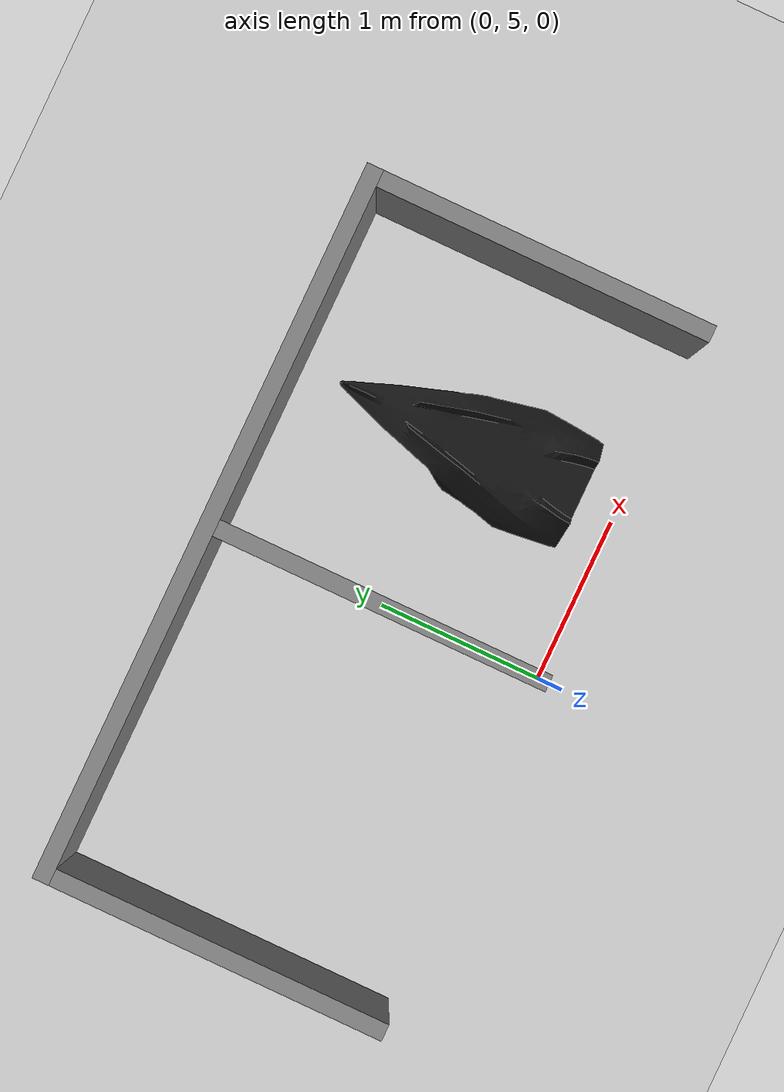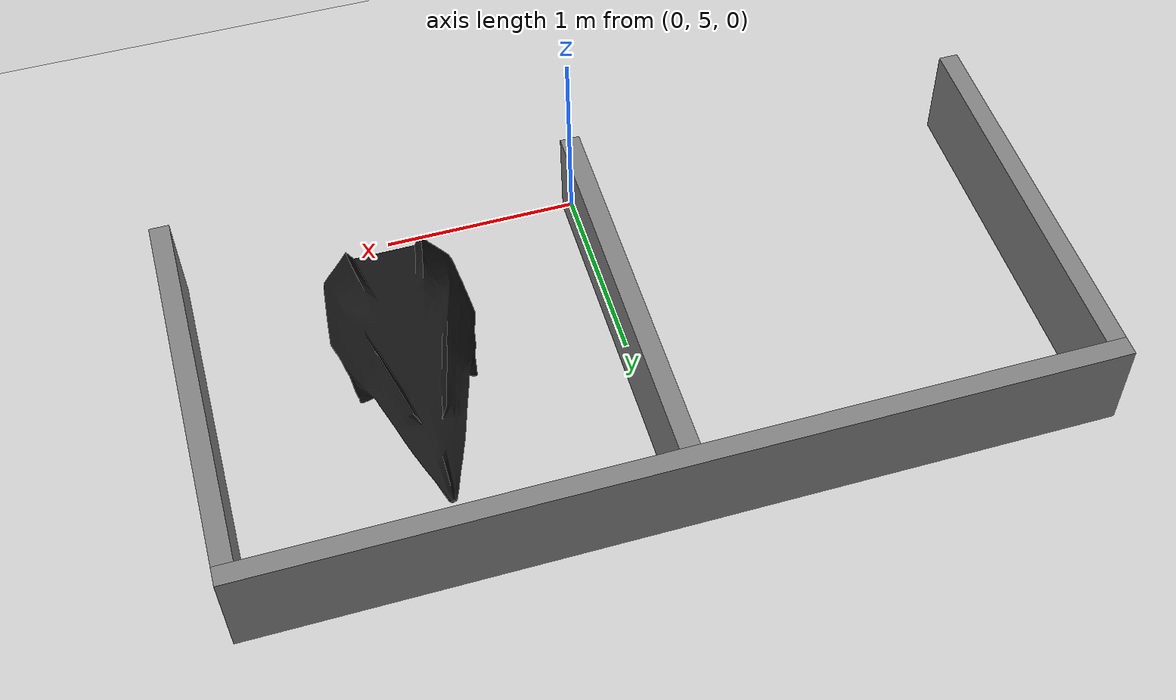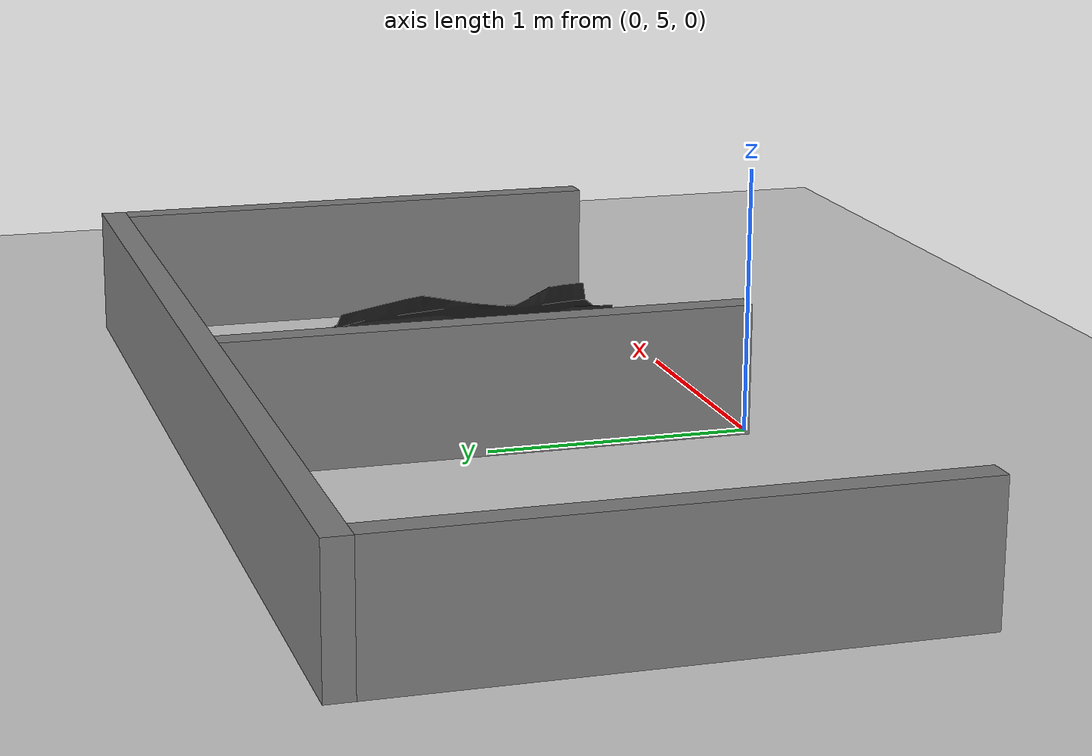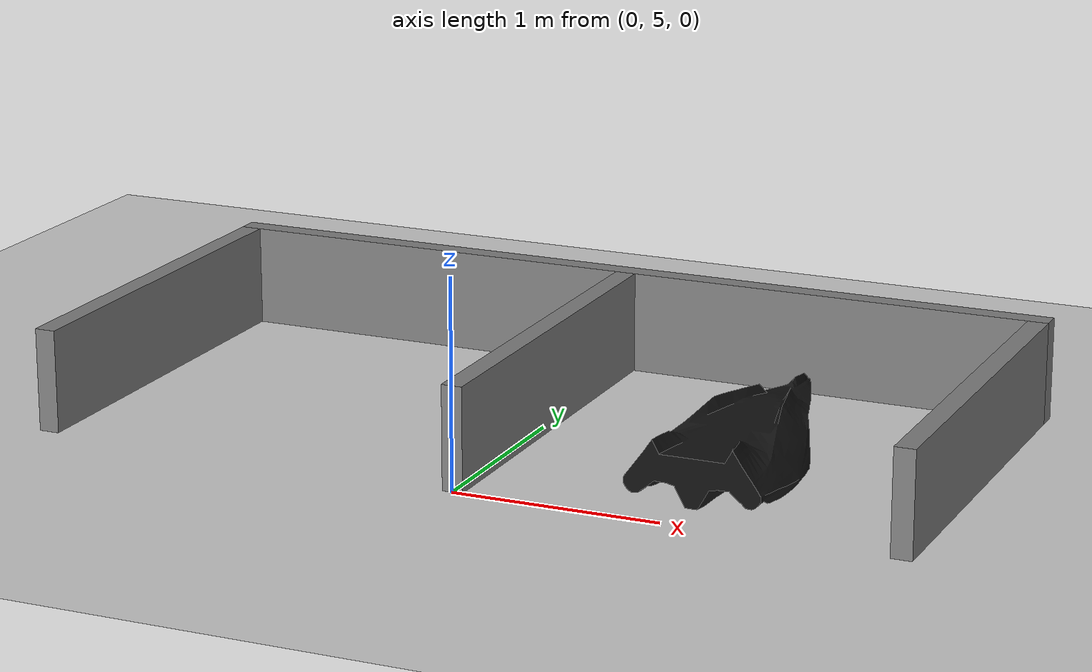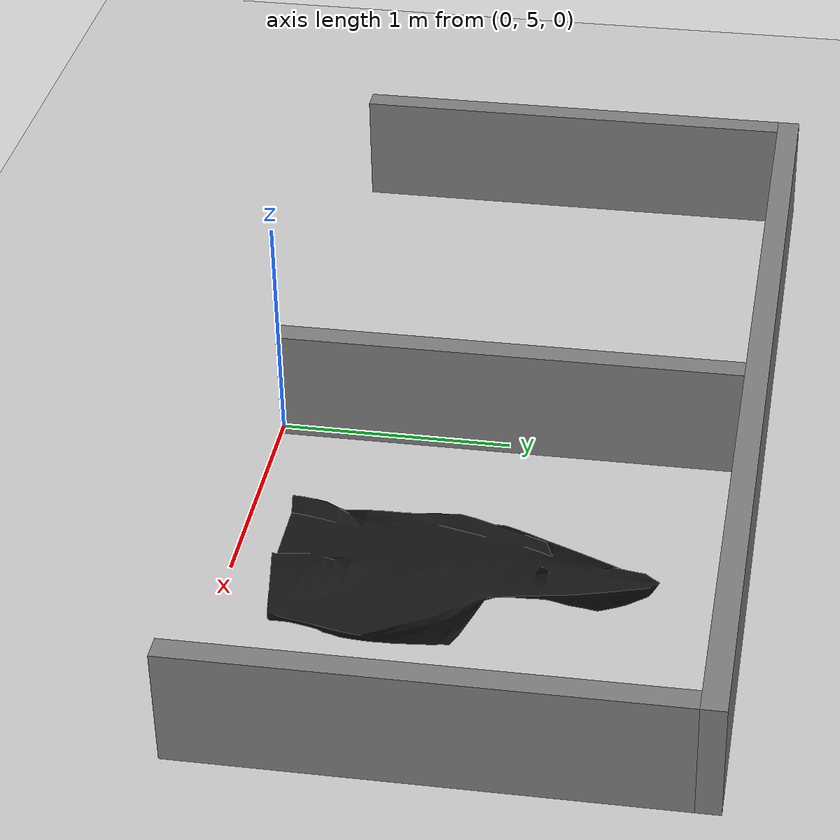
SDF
<?xml version="1.0" ?>
<sdf version="1.10">
    <world name="default">
        <spherical_coordinates>
            <surface_model>EARTH_WGS84</surface_model>
            <world_frame_orientation>ENU</world_frame_orientation>
            <latitude_deg>63.4305</latitude_deg>
            <longitude_deg>10.3951</longitude_deg>
            <elevation>0</elevation>
            <heading_deg>0</heading_deg>
        </spherical_coordinates>
        <physics name="1ms" type="ignored">
            <max_step_size>0.001</max_step_size>
            <real_time_factor>1.0</real_time_factor>
        </physics>
        <plugin
            filename="gz-sim-physics-system"
            name="gz::sim::systems::Physics">
        </plugin>
        <plugin
            filename="gz-sim-user-commands-system"
            name="gz::sim::systems::UserCommands">
        </plugin>
        <plugin
            filename="gz-sim-scene-broadcaster-system"
            name="gz::sim::systems::SceneBroadcaster">
        </plugin>
        <plugin
            filename="gz-sim-sensors-system"
            name="gz::sim::systems::Sensors">
            <render_engine>ogre2</render_engine>
        </plugin>
        <plugin
            filename="gz-sim-imu-system"
            name="gz::sim::systems::Imu">
        </plugin>
        <plugin
            filename="gz-sim-navsat-system"
            name="gz::sim::systems::NavSat">
        </plugin>

        <light type="directional" name="sun">
            <cast_shadows>true</cast_shadows>
            <pose>0 0 10 0 0 0</pose>
            <diffuse>0.8 0.8 0.8 1</diffuse>
            <specular>0.2 0.2 0.2 1</specular>
            <attenuation>
                <range>1000</range>
                <constant>0.9</constant>
                <linear>0.01</linear>
                <quadratic>0.001</quadratic>
            </attenuation>
            <direction>-0.5 0.1 -0.9</direction>
        </light>

        <model name="ground_plane">
            <static>true</static>
            <link name="link">
                <collision name="collision">
                    <geometry>
                        <plane>
                            <normal>0 0 1</normal>
                        </plane>
                    </geometry>
                </collision>
                <visual name="visual">
                    <geometry>
                        <plane>
                            <normal>0 0 1</normal>
                            <size>100 100</size>
                        </plane>
                    </geometry>
                    <material>
                        <ambient>0.8 0.8 0.8 1</ambient>
                        <diffuse>0.8 0.8 0.8 1</diffuse>
                        <specular>0.8 0.8 0.8 1</specular>
                    </material>
                </visual>
            </link>
        </model>

        <model name="dock_task_3_1_occupied">
            <static>true</static>
            <pose>0 0 0 0 0 1.570796</pose>

            <link name="left_arm">
                <pose>6.0 2.10 0.25 0 0 0</pose>
                <collision name="collision">
                    <geometry>
                        <box><size>2.0 0.1 0.5</size></box>
                    </geometry>
                </collision>
                <visual name="visual">
                    <geometry>
                        <box><size>2.0 0.1 0.5</size></box>
                    </geometry>
                    <material>
                        <ambient>0.5 0.5 0.5 1</ambient>
                        <diffuse>0.5 0.5 0.5 1</diffuse>
                        <specular>0.4 0.4 0.4 1</specular>
                    </material>
                </visual>
            </link>

            <link name="middle_arm">
                <pose>6.0 0.00 0.25 0 0 0</pose>
                <collision name="collision">
                    <geometry>
                        <box><size>2.0 0.1 0.5</size></box>
                    </geometry>
                </collision>
                <visual name="visual">
                    <geometry>
                        <box><size>2.0 0.1 0.5</size></box>
                    </geometry>
                    <material>
                        <ambient>0.5 0.5 0.5 1</ambient>
                        <diffuse>0.5 0.5 0.5 1</diffuse>
                        <specular>0.4 0.4 0.4 1</specular>
                    </material>
                </visual>
            </link>

            <link name="right_arm">
                <pose>6.0 -2.10 0.25 0 0 0</pose>
                <collision name="collision">
                    <geometry>
                        <box><size>2.0 0.1 0.5</size></box>
                    </geometry>
                </collision>
                <visual name="visual">
                    <geometry>
                        <box><size>2.0 0.1 0.5</size></box>
                    </geometry>
                    <material>
                        <ambient>0.5 0.5 0.5 1</ambient>
                        <diffuse>0.5 0.5 0.5 1</diffuse>
                        <specular>0.4 0.4 0.4 1</specular>
                    </material>
                </visual>
            </link>

            <link name="back_wall">
                <pose>7.05 0.00 0.25 0 0 0</pose>
                <collision name="collision">
                    <geometry>
                        <box><size>0.1 4.3 0.5</size></box>
                    </geometry>
                </collision>
                <visual name="visual">
                    <geometry>
                        <box><size>0.1 4.3 0.5</size></box>
                    </geometry>
                    <material>
                        <ambient>0.5 0.5 0.5 1</ambient>
                        <diffuse>0.5 0.5 0.5 1</diffuse>
                        <specular>0.4 0.4 0.4 1</specular>
                    </material>
                </visual>
            </link>
        </model>

        <model name="decoy_boat">
            <static>true</static>
            <pose>0 0 0 0 0 1.570796</pose>
            <link name="hull">
                <pose>6.0 -1.05 0.1 0 0 0</pose>
                <visual name="visual">
                    <geometry>
                        <mesh><uri>../meshes/hull_visual.obj</uri></mesh>
                    </geometry>
                    <material>
                        <ambient>0.073237 0.073237 0.073237 1</ambient>
                        <diffuse>0.073237 0.073237 0.073237 1</diffuse>
                    </material>
                </visual>
                <collision name="collision">
                    <geometry>
                        <mesh><uri>../meshes/hull_collision.stl</uri></mesh>
                    </geometry>
                </collision>
            </link>
        </model>
    </world>
</sdf>
